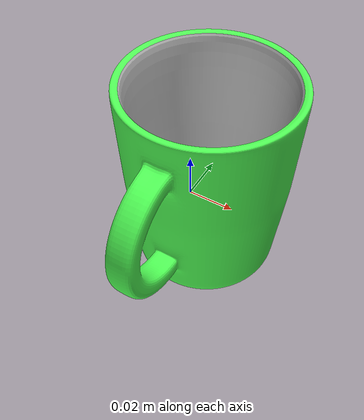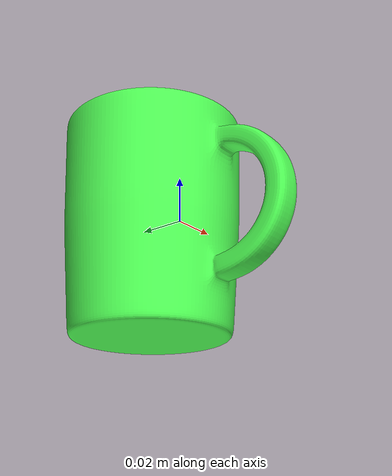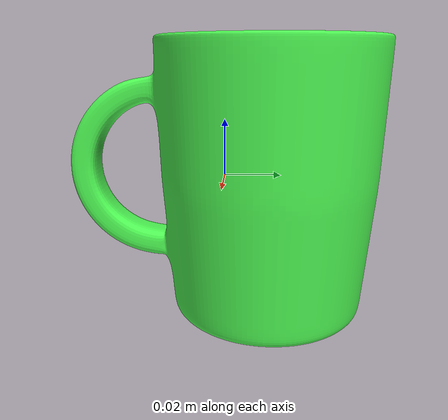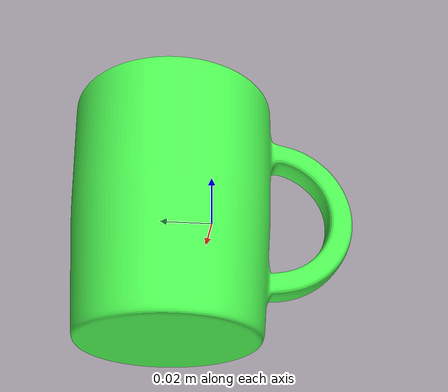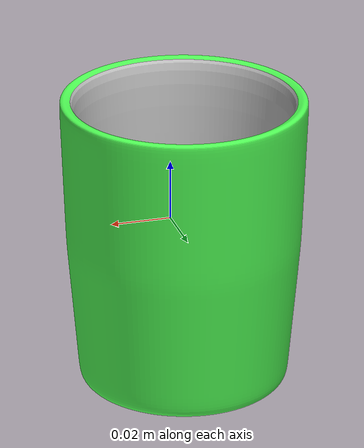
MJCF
<mujoco model="mug_35">
  <asset>
    <mesh file="visual/model_normalized_0.obj" name="model_normalized_0_vis" scale="0.11 0.11 0.11" refquat="-1.0 0.0 0.0 -2.7755575615628914e-16"/>
    <mesh file="visual/model_normalized_1.obj" name="model_normalized_1_vis" scale="0.11 0.11 0.11" refquat="-1.0 0.0 0.0 -2.7755575615628914e-16"/>
    <material name="Inner" specular="0.1" shininess="0.2" rgba="0.800000 0.800000 0.800000 1.0" emission="0.15"/>
    <material name="Outer" specular="0.1" shininess="0.2" rgba="0.310326 1.000000 0.330837 1.0" emission="0.15"/>
    <mesh file="collision/collision_mesh_collision_0.obj" name="mug_collision_mesh_0" scale="0.11 0.11 0.11" refquat="-1.0 0.0 0.0 -2.7755575615628914e-16"/>
    <mesh file="collision/collision_mesh_collision_1.obj" name="mug_collision_mesh_1" scale="0.11 0.11 0.11" refquat="-1.0 0.0 0.0 -2.7755575615628914e-16"/>
    <mesh file="collision/collision_mesh_collision_2.obj" name="mug_collision_mesh_2" scale="0.11 0.11 0.11" refquat="-1.0 0.0 0.0 -2.7755575615628914e-16"/>
    <mesh file="collision/collision_mesh_collision_3.obj" name="mug_collision_mesh_3" scale="0.11 0.11 0.11" refquat="-1.0 0.0 0.0 -2.7755575615628914e-16"/>
    <mesh file="collision/collision_mesh_collision_4.obj" name="mug_collision_mesh_4" scale="0.11 0.11 0.11" refquat="-1.0 0.0 0.0 -2.7755575615628914e-16"/>
    <mesh file="collision/collision_mesh_collision_5.obj" name="mug_collision_mesh_5" scale="0.11 0.11 0.11" refquat="-1.0 0.0 0.0 -2.7755575615628914e-16"/>
    <mesh file="collision/collision_mesh_collision_6.obj" name="mug_collision_mesh_6" scale="0.11 0.11 0.11" refquat="-1.0 0.0 0.0 -2.7755575615628914e-16"/>
    <mesh file="collision/collision_mesh_collision_7.obj" name="mug_collision_mesh_7" scale="0.11 0.11 0.11" refquat="-1.0 0.0 0.0 -2.7755575615628914e-16"/>
    <mesh file="collision/collision_mesh_collision_8.obj" name="mug_collision_mesh_8" scale="0.11 0.11 0.11" refquat="-1.0 0.0 0.0 -2.7755575615628914e-16"/>
    <mesh file="collision/collision_mesh_collision_9.obj" name="mug_collision_mesh_9" scale="0.11 0.11 0.11" refquat="-1.0 0.0 0.0 -2.7755575615628914e-16"/>
    <mesh file="collision/collision_mesh_collision_10.obj" name="mug_collision_mesh_10" scale="0.11 0.11 0.11" refquat="-1.0 0.0 0.0 -2.7755575615628914e-16"/>
    <mesh file="collision/collision_mesh_collision_11.obj" name="mug_collision_mesh_11" scale="0.11 0.11 0.11" refquat="-1.0 0.0 0.0 -2.7755575615628914e-16"/>
    <mesh file="collision/collision_mesh_collision_12.obj" name="mug_collision_mesh_12" scale="0.11 0.11 0.11" refquat="-1.0 0.0 0.0 -2.7755575615628914e-16"/>
    <mesh file="collision/collision_mesh_collision_13.obj" name="mug_collision_mesh_13" scale="0.11 0.11 0.11" refquat="-1.0 0.0 0.0 -2.7755575615628914e-16"/>
    <mesh file="collision/collision_mesh_collision_14.obj" name="mug_collision_mesh_14" scale="0.11 0.11 0.11" refquat="-1.0 0.0 0.0 -2.7755575615628914e-16"/>
    <mesh file="collision/collision_mesh_collision_15.obj" name="mug_collision_mesh_15" scale="0.11 0.11 0.11" refquat="-1.0 0.0 0.0 -2.7755575615628914e-16"/>
  </asset>
  <default>
    <default class="region">
      <geom group="1" conaffinity="0" contype="0" rgba="0 1 0 0" density="0"/>
    </default>
    <default class="collision">
      <geom group="3" rgba="0.5 0 0 0.5" density="0"/>
    </default>
  </default>
  <worldbody>
    <body>
      <body name="object">
        <geom density="0" friction="1.2 0.05 0.001" type="mesh" mesh="model_normalized_0_vis" conaffinity="0" contype="0" group="1" material="Inner" mass="0.3"/>
        <geom density="0" friction="1.2 0.05 0.001" type="mesh" mesh="model_normalized_1_vis" conaffinity="0" contype="0" group="1" material="Outer"/>
        <geom class="region" name="reg_bbox" type="box" pos="-6.083000000003947e-07 -5.214000000003383e-07 9.900000000895303e-09" size="0.03938357939999999 0.0549994786 0.0482955022" density="0"/>        <geom mesh="mug_collision_mesh_0" type="mesh" class="collision" density="0"/>
        <geom mesh="mug_collision_mesh_1" type="mesh" class="collision" density="0"/>
        <geom mesh="mug_collision_mesh_2" type="mesh" class="collision" density="0"/>
        <geom mesh="mug_collision_mesh_3" type="mesh" class="collision" density="0"/>
        <geom mesh="mug_collision_mesh_4" type="mesh" class="collision" density="0"/>
        <geom mesh="mug_collision_mesh_5" type="mesh" class="collision" density="0"/>
        <geom mesh="mug_collision_mesh_6" type="mesh" class="collision" density="0"/>
        <geom mesh="mug_collision_mesh_7" type="mesh" class="collision" density="0"/>
        <geom mesh="mug_collision_mesh_8" type="mesh" class="collision" density="0"/>
        <geom mesh="mug_collision_mesh_9" type="mesh" class="collision" density="0"/>
        <geom mesh="mug_collision_mesh_10" type="mesh" class="collision" density="0"/>
        <geom mesh="mug_collision_mesh_11" type="mesh" class="collision" density="0"/>
        <geom mesh="mug_collision_mesh_12" type="mesh" class="collision" density="0"/>
        <geom mesh="mug_collision_mesh_13" type="mesh" class="collision" density="0"/>
        <geom mesh="mug_collision_mesh_14" type="mesh" class="collision" density="0"/>
        <geom mesh="mug_collision_mesh_15" type="mesh" class="collision" density="0"/>
        <geom rgba="0 0 0 0" size="0.038 0.01" pos="0 0.016 0.026" type="cylinder" name="liquid" class="region" density="0"/>        <geom rgba="0 0 0 0 " size="0.03 0.045" pos="0 0.016 0.001" type="cylinder" name="reg_int" class="region" density="0"/>      </body>
    </body>
  </worldbody>
</mujoco>
